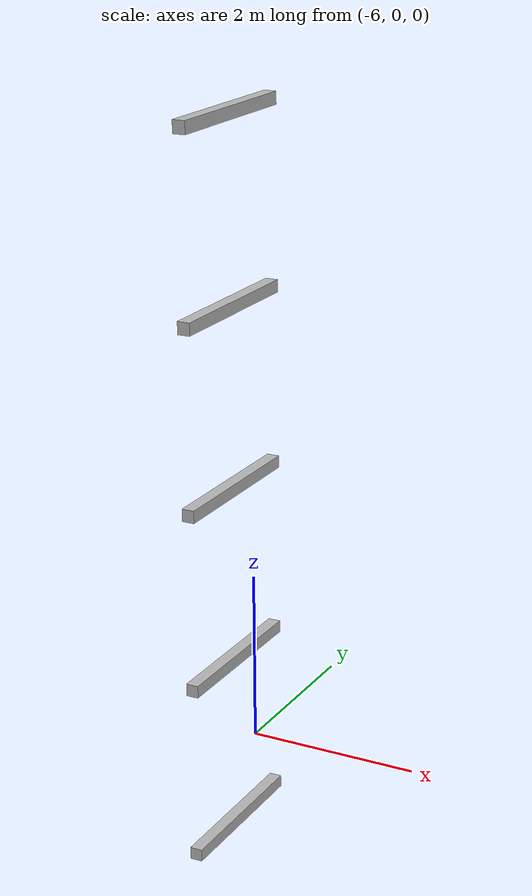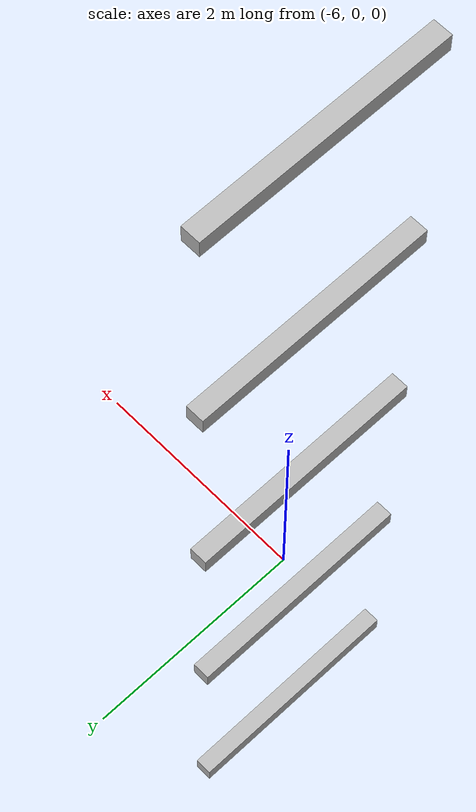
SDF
<sdf version="1.7">
 <world name="default">
  <model name="orthogonal_747_2.000.15_TS">
   <static>1</static>
   <link name="y_link_0_2_0">
    <inertial>
     <mass>1</mass>
     <inertia>
      <ixx>0.166667</ixx>
      <ixy>0</ixy>
      <ixz>0</ixz>
      <iyy>0.166667</iyy>
      <iyz>0</iyz>
      <izz>0.166667</izz>
     </inertia>
    </inertial>
    <pose>0 5.375 1.075 0 -0 0</pose>
    <visual name="visual_0">
     <laser_retro>330</laser_retro>
     <geometry><box><size>0.15 1e-06 0.15</size></box></geometry>
     <material>
      <script><name>Gazebo/Grey</name><uri>file://media/materials/scripts/gazebo.material</uri></script>
      <shader type="pixel"><normal_map>__default__</normal_map></shader>
      <ambient>0.678 0.498 0.659 1</ambient>
      <diffuse>0.7 0.7 0.7 1</diffuse>
      <specular>0.01 0.01 0.01 1</specular>
      <emissive>0 0 0 1</emissive>
     </material>
     <pose>0 -1 0 0 -0 0</pose>
     <transparency>1</transparency>
    </visual>
    <visual name="visual_1">
     <laser_retro>331</laser_retro>
     <geometry><box><size>0.15 1e-06 0.15</size></box></geometry>
     <material>
      <script><name>Gazebo/Grey</name><uri>file://media/materials/scripts/gazebo.material</uri></script>
      <shader type="pixel"><normal_map>__default__</normal_map></shader>
      <ambient>0.447 0.624 0.812 1</ambient>
      <diffuse>0.7 0.7 0.7 1</diffuse>
      <specular>0.01 0.01 0.01 1</specular>
      <emissive>0 0 0 1</emissive>
     </material>
     <pose>0 1 0 0 -0 0</pose>
     <transparency>1</transparency>
    </visual>
    <visual name="visual_2">
     <laser_retro>332</laser_retro>
     <geometry><box><size>0.15 2 1e-06</size></box></geometry>
     <material>
      <script><name>Gazebo/Grey</name><uri>file://media/materials/scripts/gazebo.material</uri></script>
      <shader type="pixel"><normal_map>__default__</normal_map></shader>
      <ambient>0.988 0.686 0.243 1</ambient>
      <diffuse>0.7 0.7 0.7 1</diffuse>
      <specular>0.01 0.01 0.01 1</specular>
      <emissive>0 0 0 1</emissive>
     </material>
     <pose>0 0 -0.075 0 -0 0</pose>
     <transparency>1</transparency>
    </visual>
    <visual name="visual_3">
     <laser_retro>333</laser_retro>
     <geometry><box><size>1e-06 2 0.15</size></box></geometry>
     <material>
      <script><name>Gazebo/Grey</name><uri>file://media/materials/scripts/gazebo.material</uri></script>
      <shader type="pixel"><normal_map>__default__</normal_map></shader>
      <ambient>0.988 0.914 0.31 1</ambient>
      <diffuse>0.7 0.7 0.7 1</diffuse>
      <specular>0.01 0.01 0.01 1</specular>
      <emissive>0 0 0 1</emissive>
     </material>
     <pose>0.075 0 0 0 -0 0</pose>
     <transparency>1</transparency>
    </visual>
    <visual name="visual_4">
     <laser_retro>334</laser_retro>
     <geometry><box><size>0.15 2 1e-06</size></box></geometry>
     <material>
      <script><name>Gazebo/Grey</name><uri>file://media/materials/scripts/gazebo.material</uri></script>
      <shader type="pixel"><normal_map>__default__</normal_map></shader>
      <ambient>0.937 0.161 0.161 1</ambient>
      <diffuse>0.7 0.7 0.7 1</diffuse>
      <specular>0.01 0.01 0.01 1</specular>
      <emissive>0 0 0 1</emissive>
     </material>
     <pose>0 0 0.075 0 -0 0</pose>
     <transparency>1</transparency>
    </visual>
    <visual name="visual_5">
     <laser_retro>335</laser_retro>
     <geometry><box><size>1e-06 2 0.15</size></box></geometry>
     <material>
      <script><name>Gazebo/Grey</name><uri>file://media/materials/scripts/gazebo.material</uri></script>
      <shader type="pixel"><normal_map>__default__</normal_map></shader>
      <ambient>0.541 0.886 0.204 1</ambient>
      <diffuse>0.7 0.7 0.7 1</diffuse>
      <specular>0.01 0.01 0.01 1</specular>
      <emissive>0 0 0 1</emissive>
     </material>
     <pose>-0.075 0 0 0 -0 0</pose>
     <transparency>1</transparency>
    </visual>
    <visual name="visual_texture">
     <geometry><box><size>0.149985 1.9998 0.149985</size></box></geometry>
     <material>
      <script>
       <uri>model://BASE_MODELS/simple_block_v2_textured/materials/scripts</uri>
       <uri>model://BASE_MODELS/simple_block_v2_textured/materials/textures</uri>
       <name>metal</name>
      </script>
     </material>
     <laser_retro>336</laser_retro>
    </visual>
    <collision name="collision">
     <geometry><box><size>0.15 2 0.15</size></box></geometry>
     <surface>
      <friction>
       <ode><mu>1</mu><mu2>1</mu2><fdir1>0 0 0</fdir1><slip1>0</slip1><slip2>0</slip2></ode>
       <torsional>
        <coefficient>1</coefficient>
        <patch_radius>0</patch_radius>
        <surface_radius>0</surface_radius>
        <use_patch_radius>1</use_patch_radius>
        <ode><slip>0</slip></ode>
       </torsional>
      </friction>
      <bounce><restitution_coefficient>0</restitution_coefficient><threshold>1e+06</threshold></bounce>
      <contact>
       <collide_without_contact>0</collide_without_contact>
       <collide_without_contact_bitmask>1</collide_without_contact_bitmask>
       <collide_bitmask>1</collide_bitmask>
       <ode>
        <soft_cfm>0</soft_cfm>
        <soft_erp>0.2</soft_erp>
        <kp>1e+13</kp>
        <kd>1</kd>
        <max_vel>0.01</max_vel>
        <min_depth>0</min_depth>
       </ode>
       <bullet>
        <split_impulse>1</split_impulse>
        <split_impulse_penetration_threshold>-0.01</split_impulse_penetration_threshold>
        <soft_cfm>0</soft_cfm>
        <soft_erp>0.2</soft_erp>
        <kp>1e+13</kp>
        <kd>1</kd>
       </bullet>
      </contact>
     </surface>
    </collision>
   </link>
   <link name="y_link_1_2_0">
    <inertial>
     <mass>1</mass>
     <inertia>
      <ixx>0.166667</ixx>
      <ixy>0</ixy>
      <ixz>0</ixz>
      <iyy>0.166667</iyy>
      <iyz>0</iyz>
      <izz>0.166667</izz>
     </inertia>
    </inertial>
    <pose>0 5.375 3.225 0 -0 0</pose>
    <visual name="visual_0">
     <laser_retro>1149</laser_retro>
     <geometry><box><size>0.15 1e-06 0.15</size></box></geometry>
     <material>
      <script><name>Gazebo/Grey</name><uri>file://media/materials/scripts/gazebo.material</uri></script>
      <shader type="pixel"><normal_map>__default__</normal_map></shader>
      <ambient>0.678 0.498 0.659 1</ambient>
      <diffuse>0.7 0.7 0.7 1</diffuse>
      <specular>0.01 0.01 0.01 1</specular>
      <emissive>0 0 0 1</emissive>
     </material>
     <pose>0 -1 0 0 -0 0</pose>
     <transparency>1</transparency>
    </visual>
    <visual name="visual_1">
     <laser_retro>1150</laser_retro>
     <geometry><box><size>0.15 1e-06 0.15</size></box></geometry>
     <material>
      <script><name>Gazebo/Grey</name><uri>file://media/materials/scripts/gazebo.material</uri></script>
      <shader type="pixel"><normal_map>__default__</normal_map></shader>
      <ambient>0.447 0.624 0.812 1</ambient>
      <diffuse>0.7 0.7 0.7 1</diffuse>
      <specular>0.01 0.01 0.01 1</specular>
      <emissive>0 0 0 1</emissive>
     </material>
     <pose>0 1 0 0 -0 0</pose>
     <transparency>1</transparency>
    </visual>
    <visual name="visual_2">
     <laser_retro>1151</laser_retro>
     <geometry><box><size>0.15 2 1e-06</size></box></geometry>
     <material>
      <script><name>Gazebo/Grey</name><uri>file://media/materials/scripts/gazebo.material</uri></script>
      <shader type="pixel"><normal_map>__default__</normal_map></shader>
      <ambient>0.988 0.686 0.243 1</ambient>
      <diffuse>0.7 0.7 0.7 1</diffuse>
      <specular>0.01 0.01 0.01 1</specular>
      <emissive>0 0 0 1</emissive>
     </material>
     <pose>0 0 -0.075 0 -0 0</pose>
     <transparency>1</transparency>
    </visual>
    <visual name="visual_3">
     <laser_retro>1152</laser_retro>
     <geometry><box><size>1e-06 2 0.15</size></box></geometry>
     <material>
      <script><name>Gazebo/Grey</name><uri>file://media/materials/scripts/gazebo.material</uri></script>
      <shader type="pixel"><normal_map>__default__</normal_map></shader>
      <ambient>0.988 0.914 0.31 1</ambient>
      <diffuse>0.7 0.7 0.7 1</diffuse>
      <specular>0.01 0.01 0.01 1</specular>
      <emissive>0 0 0 1</emissive>
     </material>
     <pose>0.075 0 0 0 -0 0</pose>
     <transparency>1</transparency>
    </visual>
    <visual name="visual_4">
     <laser_retro>1153</laser_retro>
     <geometry><box><size>0.15 2 1e-06</size></box></geometry>
     <material>
      <script><name>Gazebo/Grey</name><uri>file://media/materials/scripts/gazebo.material</uri></script>
      <shader type="pixel"><normal_map>__default__</normal_map></shader>
      <ambient>0.937 0.161 0.161 1</ambient>
      <diffuse>0.7 0.7 0.7 1</diffuse>
      <specular>0.01 0.01 0.01 1</specular>
      <emissive>0 0 0 1</emissive>
     </material>
     <pose>0 0 0.075 0 -0 0</pose>
     <transparency>1</transparency>
    </visual>
    <visual name="visual_5">
     <laser_retro>1154</laser_retro>
     <geometry><box><size>1e-06 2 0.15</size></box></geometry>
     <material>
      <script><name>Gazebo/Grey</name><uri>file://media/materials/scripts/gazebo.material</uri></script>
      <shader type="pixel"><normal_map>__default__</normal_map></shader>
      <ambient>0.541 0.886 0.204 1</ambient>
      <diffuse>0.7 0.7 0.7 1</diffuse>
      <specular>0.01 0.01 0.01 1</specular>
      <emissive>0 0 0 1</emissive>
     </material>
     <pose>-0.075 0 0 0 -0 0</pose>
     <transparency>1</transparency>
    </visual>
    <visual name="visual_texture">
     <geometry><box><size>0.149985 1.9998 0.149985</size></box></geometry>
     <material>
      <script>
       <uri>model://BASE_MODELS/simple_block_v2_textured/materials/scripts</uri>
       <uri>model://BASE_MODELS/simple_block_v2_textured/materials/textures</uri>
       <name>metal</name>
      </script>
     </material>
     <laser_retro>1155</laser_retro>
    </visual>
    <collision name="collision">
     <geometry><box><size>0.15 2 0.15</size></box></geometry>
     <surface>
      <friction>
       <ode><mu>1</mu><mu2>1</mu2><fdir1>0 0 0</fdir1><slip1>0</slip1><slip2>0</slip2></ode>
       <torsional>
        <coefficient>1</coefficient>
        <patch_radius>0</patch_radius>
        <surface_radius>0</surface_radius>
        <use_patch_radius>1</use_patch_radius>
        <ode><slip>0</slip></ode>
       </torsional>
      </friction>
      <bounce><restitution_coefficient>0</restitution_coefficient><threshold>1e+06</threshold></bounce>
      <contact>
       <collide_without_contact>0</collide_without_contact>
       <collide_without_contact_bitmask>1</collide_without_contact_bitmask>
       <collide_bitmask>1</collide_bitmask>
       <ode>
        <soft_cfm>0</soft_cfm>
        <soft_erp>0.2</soft_erp>
        <kp>1e+13</kp>
        <kd>1</kd>
        <max_vel>0.01</max_vel>
        <min_depth>0</min_depth>
       </ode>
       <bullet>
        <split_impulse>1</split_impulse>
        <split_impulse_penetration_threshold>-0.01</split_impulse_penetration_threshold>
        <soft_cfm>0</soft_cfm>
        <soft_erp>0.2</soft_erp>
        <kp>1e+13</kp>
        <kd>1</kd>
       </bullet>
      </contact>
     </surface>
    </collision>
   </link>
   <link name="y_link_2_2_0">
    <inertial>
     <mass>1</mass>
     <inertia>
      <ixx>0.166667</ixx>
      <ixy>0</ixy>
      <ixz>0</ixz>
      <iyy>0.166667</iyy>
      <iyz>0</iyz>
      <izz>0.166667</izz>
     </inertia>
    </inertial>
    <pose>0 5.375 5.375 0 -0 0</pose>
    <visual name="visual_0">
     <laser_retro>2052</laser_retro>
     <geometry><box><size>0.15 1e-06 0.15</size></box></geometry>
     <material>
      <script><name>Gazebo/Grey</name><uri>file://media/materials/scripts/gazebo.material</uri></script>
      <shader type="pixel"><normal_map>__default__</normal_map></shader>
      <ambient>0.678 0.498 0.659 1</ambient>
      <diffuse>0.7 0.7 0.7 1</diffuse>
      <specular>0.01 0.01 0.01 1</specular>
      <emissive>0 0 0 1</emissive>
     </material>
     <pose>0 -1 0 0 -0 0</pose>
     <transparency>1</transparency>
    </visual>
    <visual name="visual_1">
     <laser_retro>2053</laser_retro>
     <geometry><box><size>0.15 1e-06 0.15</size></box></geometry>
     <material>
      <script><name>Gazebo/Grey</name><uri>file://media/materials/scripts/gazebo.material</uri></script>
      <shader type="pixel"><normal_map>__default__</normal_map></shader>
      <ambient>0.447 0.624 0.812 1</ambient>
      <diffuse>0.7 0.7 0.7 1</diffuse>
      <specular>0.01 0.01 0.01 1</specular>
      <emissive>0 0 0 1</emissive>
     </material>
     <pose>0 1 0 0 -0 0</pose>
     <transparency>1</transparency>
    </visual>
    <visual name="visual_2">
     <laser_retro>2054</laser_retro>
     <geometry><box><size>0.15 2 1e-06</size></box></geometry>
     <material>
      <script><name>Gazebo/Grey</name><uri>file://media/materials/scripts/gazebo.material</uri></script>
      <shader type="pixel"><normal_map>__default__</normal_map></shader>
      <ambient>0.988 0.686 0.243 1</ambient>
      <diffuse>0.7 0.7 0.7 1</diffuse>
      <specular>0.01 0.01 0.01 1</specular>
      <emissive>0 0 0 1</emissive>
     </material>
     <pose>0 0 -0.075 0 -0 0</pose>
     <transparency>1</transparency>
    </visual>
    <visual name="visual_3">
     <laser_retro>2055</laser_retro>
     <geometry><box><size>1e-06 2 0.15</size></box></geometry>
     <material>
      <script><name>Gazebo/Grey</name><uri>file://media/materials/scripts/gazebo.material</uri></script>
      <shader type="pixel"><normal_map>__default__</normal_map></shader>
      <ambient>0.988 0.914 0.31 1</ambient>
      <diffuse>0.7 0.7 0.7 1</diffuse>
      <specular>0.01 0.01 0.01 1</specular>
      <emissive>0 0 0 1</emissive>
     </material>
     <pose>0.075 0 0 0 -0 0</pose>
     <transparency>1</transparency>
    </visual>
    <visual name="visual_4">
     <laser_retro>2056</laser_retro>
     <geometry><box><size>0.15 2 1e-06</size></box></geometry>
     <material>
      <script><name>Gazebo/Grey</name><uri>file://media/materials/scripts/gazebo.material</uri></script>
      <shader type="pixel"><normal_map>__default__</normal_map></shader>
      <ambient>0.937 0.161 0.161 1</ambient>
      <diffuse>0.7 0.7 0.7 1</diffuse>
      <specular>0.01 0.01 0.01 1</specular>
      <emissive>0 0 0 1</emissive>
     </material>
     <pose>0 0 0.075 0 -0 0</pose>
     <transparency>1</transparency>
    </visual>
    <visual name="visual_5">
     <laser_retro>2057</laser_retro>
     <geometry><box><size>1e-06 2 0.15</size></box></geometry>
     <material>
      <script><name>Gazebo/Grey</name><uri>file://media/materials/scripts/gazebo.material</uri></script>
      <shader type="pixel"><normal_map>__default__</normal_map></shader>
      <ambient>0.541 0.886 0.204 1</ambient>
      <diffuse>0.7 0.7 0.7 1</diffuse>
      <specular>0.01 0.01 0.01 1</specular>
      <emissive>0 0 0 1</emissive>
     </material>
     <pose>-0.075 0 0 0 -0 0</pose>
     <transparency>1</transparency>
    </visual>
    <visual name="visual_texture">
     <geometry><box><size>0.149985 1.9998 0.149985</size></box></geometry>
     <material>
      <script>
       <uri>model://BASE_MODELS/simple_block_v2_textured/materials/scripts</uri>
       <uri>model://BASE_MODELS/simple_block_v2_textured/materials/textures</uri>
       <name>metal</name>
      </script>
     </material>
     <laser_retro>2058</laser_retro>
    </visual>
    <collision name="collision">
     <geometry><box><size>0.15 2 0.15</size></box></geometry>
     <surface>
      <friction>
       <ode><mu>1</mu><mu2>1</mu2><fdir1>0 0 0</fdir1><slip1>0</slip1><slip2>0</slip2></ode>
       <torsional>
        <coefficient>1</coefficient>
        <patch_radius>0</patch_radius>
        <surface_radius>0</surface_radius>
        <use_patch_radius>1</use_patch_radius>
        <ode><slip>0</slip></ode>
       </torsional>
      </friction>
      <bounce><restitution_coefficient>0</restitution_coefficient><threshold>1e+06</threshold></bounce>
      <contact>
       <collide_without_contact>0</collide_without_contact>
       <collide_without_contact_bitmask>1</collide_without_contact_bitmask>
       <collide_bitmask>1</collide_bitmask>
       <ode>
        <soft_cfm>0</soft_cfm>
        <soft_erp>0.2</soft_erp>
        <kp>1e+13</kp>
        <kd>1</kd>
        <max_vel>0.01</max_vel>
        <min_depth>0</min_depth>
       </ode>
       <bullet>
        <split_impulse>1</split_impulse>
        <split_impulse_penetration_threshold>-0.01</split_impulse_penetration_threshold>
        <soft_cfm>0</soft_cfm>
        <soft_erp>0.2</soft_erp>
        <kp>1e+13</kp>
        <kd>1</kd>
       </bullet>
      </contact>
     </surface>
    </collision>
   </link>
   <link name="y_link_3_2_0">
    <inertial>
     <mass>1</mass>
     <inertia>
      <ixx>0.166667</ixx>
      <ixy>0</ixy>
      <ixz>0</ixz>
      <iyy>0.166667</iyy>
      <iyz>0</iyz>
      <izz>0.166667</izz>
     </inertia>
    </inertial>
    <pose>0 5.375 7.525 0 -0 0</pose>
    <visual name="visual_0">
     <laser_retro>2955</laser_retro>
     <geometry><box><size>0.15 1e-06 0.15</size></box></geometry>
     <material>
      <script><name>Gazebo/Grey</name><uri>file://media/materials/scripts/gazebo.material</uri></script>
      <shader type="pixel"><normal_map>__default__</normal_map></shader>
      <ambient>0.678 0.498 0.659 1</ambient>
      <diffuse>0.7 0.7 0.7 1</diffuse>
      <specular>0.01 0.01 0.01 1</specular>
      <emissive>0 0 0 1</emissive>
     </material>
     <pose>0 -1 0 0 -0 0</pose>
     <transparency>1</transparency>
    </visual>
    <visual name="visual_1">
     <laser_retro>2956</laser_retro>
     <geometry><box><size>0.15 1e-06 0.15</size></box></geometry>
     <material>
      <script><name>Gazebo/Grey</name><uri>file://media/materials/scripts/gazebo.material</uri></script>
      <shader type="pixel"><normal_map>__default__</normal_map></shader>
      <ambient>0.447 0.624 0.812 1</ambient>
      <diffuse>0.7 0.7 0.7 1</diffuse>
      <specular>0.01 0.01 0.01 1</specular>
      <emissive>0 0 0 1</emissive>
     </material>
     <pose>0 1 0 0 -0 0</pose>
     <transparency>1</transparency>
    </visual>
    <visual name="visual_2">
     <laser_retro>2957</laser_retro>
     <geometry><box><size>0.15 2 1e-06</size></box></geometry>
     <material>
      <script><name>Gazebo/Grey</name><uri>file://media/materials/scripts/gazebo.material</uri></script>
      <shader type="pixel"><normal_map>__default__</normal_map></shader>
      <ambient>0.988 0.686 0.243 1</ambient>
      <diffuse>0.7 0.7 0.7 1</diffuse>
      <specular>0.01 0.01 0.01 1</specular>
      <emissive>0 0 0 1</emissive>
     </material>
     <pose>0 0 -0.075 0 -0 0</pose>
     <transparency>1</transparency>
    </visual>
    <visual name="visual_3">
     <laser_retro>2958</laser_retro>
     <geometry><box><size>1e-06 2 0.15</size></box></geometry>
     <material>
      <script><name>Gazebo/Grey</name><uri>file://media/materials/scripts/gazebo.material</uri></script>
      <shader type="pixel"><normal_map>__default__</normal_map></shader>
      <ambient>0.988 0.914 0.31 1</ambient>
      <diffuse>0.7 0.7 0.7 1</diffuse>
      <specular>0.01 0.01 0.01 1</specular>
      <emissive>0 0 0 1</emissive>
     </material>
     <pose>0.075 0 0 0 -0 0</pose>
     <transparency>1</transparency>
    </visual>
    <visual name="visual_4">
     <laser_retro>2959</laser_retro>
     <geometry><box><size>0.15 2 1e-06</size></box></geometry>
     <material>
      <script><name>Gazebo/Grey</name><uri>file://media/materials/scripts/gazebo.material</uri></script>
      <shader type="pixel"><normal_map>__default__</normal_map></shader>
      <ambient>0.937 0.161 0.161 1</ambient>
      <diffuse>0.7 0.7 0.7 1</diffuse>
      <specular>0.01 0.01 0.01 1</specular>
      <emissive>0 0 0 1</emissive>
     </material>
     <pose>0 0 0.075 0 -0 0</pose>
     <transparency>1</transparency>
    </visual>
    <visual name="visual_5">
     <laser_retro>2960</laser_retro>
     <geometry><box><size>1e-06 2 0.15</size></box></geometry>
     <material>
      <script><name>Gazebo/Grey</name><uri>file://media/materials/scripts/gazebo.material</uri></script>
      <shader type="pixel"><normal_map>__default__</normal_map></shader>
      <ambient>0.541 0.886 0.204 1</ambient>
      <diffuse>0.7 0.7 0.7 1</diffuse>
      <specular>0.01 0.01 0.01 1</specular>
      <emissive>0 0 0 1</emissive>
     </material>
     <pose>-0.075 0 0 0 -0 0</pose>
     <transparency>1</transparency>
    </visual>
    <visual name="visual_texture">
     <geometry><box><size>0.149985 1.9998 0.149985</size></box></geometry>
     <material>
      <script>
       <uri>model://BASE_MODELS/simple_block_v2_textured/materials/scripts</uri>
       <uri>model://BASE_MODELS/simple_block_v2_textured/materials/textures</uri>
       <name>metal</name>
      </script>
     </material>
     <laser_retro>2961</laser_retro>
    </visual>
    <collision name="collision">
     <geometry><box><size>0.15 2 0.15</size></box></geometry>
     <surface>
      <friction>
       <ode><mu>1</mu><mu2>1</mu2><fdir1>0 0 0</fdir1><slip1>0</slip1><slip2>0</slip2></ode>
       <torsional>
        <coefficient>1</coefficient>
        <patch_radius>0</patch_radius>
        <surface_radius>0</surface_radius>
        <use_patch_radius>1</use_patch_radius>
        <ode><slip>0</slip></ode>
       </torsional>
      </friction>
      <bounce><restitution_coefficient>0</restitution_coefficient><threshold>1e+06</threshold></bounce>
      <contact>
       <collide_without_contact>0</collide_without_contact>
       <collide_without_contact_bitmask>1</collide_without_contact_bitmask>
       <collide_bitmask>1</collide_bitmask>
       <ode>
        <soft_cfm>0</soft_cfm>
        <soft_erp>0.2</soft_erp>
        <kp>1e+13</kp>
        <kd>1</kd>
        <max_vel>0.01</max_vel>
        <min_depth>0</min_depth>
       </ode>
       <bullet>
        <split_impulse>1</split_impulse>
        <split_impulse_penetration_threshold>-0.01</split_impulse_penetration_threshold>
        <soft_cfm>0</soft_cfm>
        <soft_erp>0.2</soft_erp>
        <kp>1e+13</kp>
        <kd>1</kd>
       </bullet>
      </contact>
     </surface>
    </collision>
   </link>
   <link name="y_link_4_2_0">
    <inertial>
     <mass>1</mass>
     <inertia>
      <ixx>0.166667</ixx>
      <ixy>0</ixy>
      <ixz>0</ixz>
      <iyy>0.166667</iyy>
      <iyz>0</iyz>
      <izz>0.166667</izz>
     </inertia>
    </inertial>
    <pose>0 5.375 9.675 0 -0 0</pose>
    <visual name="visual_0">
     <laser_retro>3858</laser_retro>
     <geometry><box><size>0.15 1e-06 0.15</size></box></geometry>
     <material>
      <script><name>Gazebo/Grey</name><uri>file://media/materials/scripts/gazebo.material</uri></script>
      <shader type="pixel"><normal_map>__default__</normal_map></shader>
      <ambient>0.678 0.498 0.659 1</ambient>
      <diffuse>0.7 0.7 0.7 1</diffuse>
      <specular>0.01 0.01 0.01 1</specular>
      <emissive>0 0 0 1</emissive>
     </material>
     <pose>0 -1 0 0 -0 0</pose>
     <transparency>1</transparency>
    </visual>
    <visual name="visual_1">
     <laser_retro>3859</laser_retro>
     <geometry><box><size>0.15 1e-06 0.15</size></box></geometry>
     <material>
      <script><name>Gazebo/Grey</name><uri>file://media/materials/scripts/gazebo.material</uri></script>
      <shader type="pixel"><normal_map>__default__</normal_map></shader>
      <ambient>0.447 0.624 0.812 1</ambient>
      <diffuse>0.7 0.7 0.7 1</diffuse>
      <specular>0.01 0.01 0.01 1</specular>
      <emissive>0 0 0 1</emissive>
     </material>
     <pose>0 1 0 0 -0 0</pose>
     <transparency>1</transparency>
    </visual>
    <visual name="visual_2">
     <laser_retro>3860</laser_retro>
     <geometry><box><size>0.15 2 1e-06</size></box></geometry>
     <material>
      <script><name>Gazebo/Grey</name><uri>file://media/materials/scripts/gazebo.material</uri></script>
      <shader type="pixel"><normal_map>__default__</normal_map></shader>
      <ambient>0.988 0.686 0.243 1</ambient>
      <diffuse>0.7 0.7 0.7 1</diffuse>
      <specular>0.01 0.01 0.01 1</specular>
      <emissive>0 0 0 1</emissive>
     </material>
     <pose>0 0 -0.075 0 -0 0</pose>
     <transparency>1</transparency>
    </visual>
    <visual name="visual_3">
     <laser_retro>3861</laser_retro>
     <geometry><box><size>1e-06 2 0.15</size></box></geometry>
     <material>
      <script><name>Gazebo/Grey</name><uri>file://media/materials/scripts/gazebo.material</uri></script>
      <shader type="pixel"><normal_map>__default__</normal_map></shader>
      <ambient>0.988 0.914 0.31 1</ambient>
      <diffuse>0.7 0.7 0.7 1</diffuse>
      <specular>0.01 0.01 0.01 1</specular>
      <emissive>0 0 0 1</emissive>
     </material>
     <pose>0.075 0 0 0 -0 0</pose>
     <transparency>1</transparency>
    </visual>
    <visual name="visual_4">
     <laser_retro>3862</laser_retro>
     <geometry><box><size>0.15 2 1e-06</size></box></geometry>
     <material>
      <script><name>Gazebo/Grey</name><uri>file://media/materials/scripts/gazebo.material</uri></script>
      <shader type="pixel"><normal_map>__default__</normal_map></shader>
      <ambient>0.937 0.161 0.161 1</ambient>
      <diffuse>0.7 0.7 0.7 1</diffuse>
      <specular>0.01 0.01 0.01 1</specular>
      <emissive>0 0 0 1</emissive>
     </material>
     <pose>0 0 0.075 0 -0 0</pose>
     <transparency>1</transparency>
    </visual>
    <visual name="visual_5">
     <laser_retro>3863</laser_retro>
     <geometry><box><size>1e-06 2 0.15</size></box></geometry>
     <material>
      <script><name>Gazebo/Grey</name><uri>file://media/materials/scripts/gazebo.material</uri></script>
      <shader type="pixel"><normal_map>__default__</normal_map></shader>
      <ambient>0.541 0.886 0.204 1</ambient>
      <diffuse>0.7 0.7 0.7 1</diffuse>
      <specular>0.01 0.01 0.01 1</specular>
      <emissive>0 0 0 1</emissive>
     </material>
     <pose>-0.075 0 0 0 -0 0</pose>
     <transparency>1</transparency>
    </visual>
    <visual name="visual_texture">
     <geometry><box><size>0.149985 1.9998 0.149985</size></box></geometry>
     <material>
      <script>
       <uri>model://BASE_MODELS/simple_block_v2_textured/materials/scripts</uri>
       <uri>model://BASE_MODELS/simple_block_v2_textured/materials/textures</uri>
       <name>metal</name>
      </script>
     </material>
     <laser_retro>3864</laser_retro>
    </visual>
    <collision name="collision">
     <geometry><box><size>0.15 2 0.15</size></box></geometry>
     <surface>
      <friction>
       <ode><mu>1</mu><mu2>1</mu2><fdir1>0 0 0</fdir1><slip1>0</slip1><slip2>0</slip2></ode>
       <torsional>
        <coefficient>1</coefficient>
        <patch_radius>0</patch_radius>
        <surface_radius>0</surface_radius>
        <use_patch_radius>1</use_patch_radius>
        <ode><slip>0</slip></ode>
       </torsional>
      </friction>
      <bounce><restitution_coefficient>0</restitution_coefficient><threshold>1e+06</threshold></bounce>
      <contact>
       <collide_without_contact>0</collide_without_contact>
       <collide_without_contact_bitmask>1</collide_without_contact_bitmask>
       <collide_bitmask>1</collide_bitmask>
       <ode>
        <soft_cfm>0</soft_cfm>
        <soft_erp>0.2</soft_erp>
        <kp>1e+13</kp>
        <kd>1</kd>
        <max_vel>0.01</max_vel>
        <min_depth>0</min_depth>
       </ode>
       <bullet>
        <split_impulse>1</split_impulse>
        <split_impulse_penetration_threshold>-0.01</split_impulse_penetration_threshold>
        <soft_cfm>0</soft_cfm>
        <soft_erp>0.2</soft_erp>
        <kp>1e+13</kp>
        <kd>1</kd>
       </bullet>
      </contact>
     </surface>
    </collision>
   </link>
   <pose>-6.47624 -5 -2.5 0 -0 0</pose>
  </model>
 </world>
</sdf>
